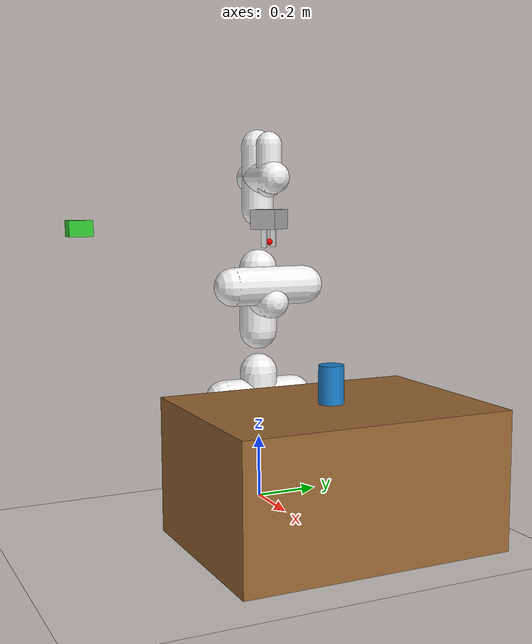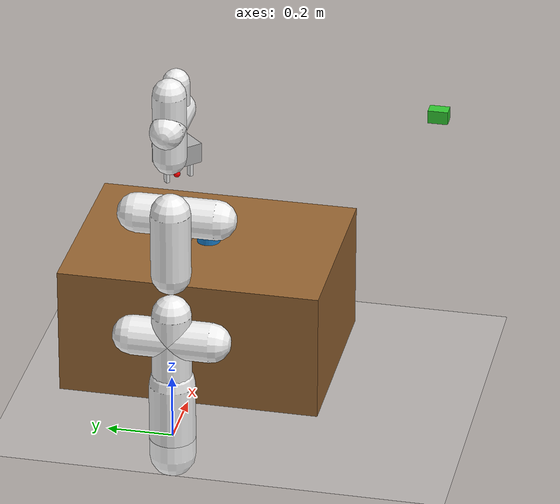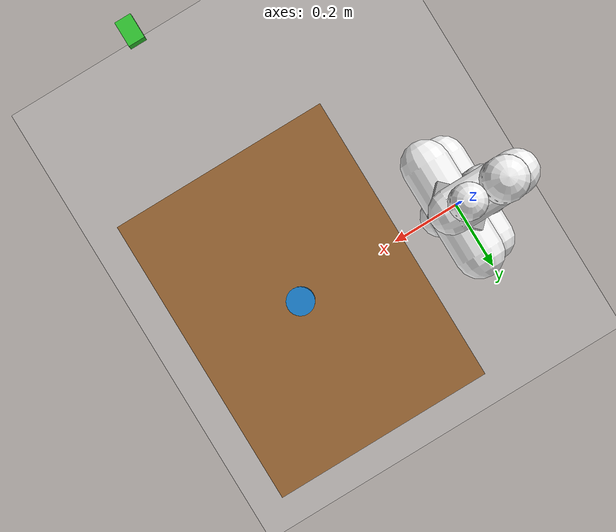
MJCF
<mujoco model="panda_grasp_scene">
  <compiler angle="radian" autolimits="true" balanceinertia="true"/>
  <option gravity="0 0 -9.81" timestep="0.002" integrator="implicitfast"/>

  <!-- Stiff contacts: high normal force, high friction multiplier -->
  <default>
    <geom solref="0.004 1" solimp="0.98 0.99 0.001"/>
  </default>

  <default>
    <default class="panda">
      <joint armature="0.1" damping="1" axis="0 0 1" range="-2.8973 2.8973"/>
      <general dyntype="none" biastype="affine"
               ctrlrange="-2.8973 2.8973" forcerange="-87 87"/>
      <default class="finger">
        <joint axis="0 1 0" type="slide" range="0 0.04"/>
      </default>
    </default>
  </default>

  <worldbody>
    <light pos="0 0 2.5" dir="0 0 -1" directional="true"/>
    <geom name="floor" type="plane" size="2 2 0.05" rgba="0.85 0.85 0.85 1"/>

    <!-- Table -->
    <body name="table" pos="0.5 0 0.2">
      <geom type="box" size="0.3 0.4 0.2" rgba="0.6 0.4 0.2 1"/>
    </body>

    <!-- Target object (cylinder = cup proxy) -->
    <body name="target_object" pos="0.5 0 0.455">
      <freejoint/>
      <inertial pos="0 0 0" mass="0.15" diaginertia="0.0002 0.0002 0.0001"/>
      <!-- radius=0.036 ensures finger inner faces (at ±0.035m from centre) -->
      <!-- contact the cylinder when the gripper closes. Light mass (0.05kg) -->
      <!-- so friction force from the simplified gripper can support lifting.  -->
      <geom name="cup" type="cylinder" size="0.036 0.055"
            rgba="0.1 0.5 0.8 1" mass="0.05" condim="4" friction="2.5 0.01 0.0001"/>
    </body>

    <body name="link0" pos="0 0 0" childclass="panda">
      <inertial mass="0.629769" pos="-0.041018 -0.00014 0.049974"
        diaginertia="0.00315 0.00388 0.004285"/>
      <geom type="capsule" size="0.07 0.12" pos="0 0 0.06" rgba="0.95 0.95 0.95 1"/>

      <body name="link1" pos="0 0 0.333">
        <inertial mass="4.970684" pos="0.003875 0.002081 -0.04762"
          diaginertia="0.0825 0.0775 0.0121"/>
        <joint name="joint1"/>
        <geom type="capsule" size="0.06 0.14" pos="0 0 -0.06" rgba="0.95 0.95 0.95 1"/>

        <!-- quat "1 -1 0 0" = 90 deg rotation around -X -->
        <body name="link2" quat="1 -1 0 0">
          <inertial mass="0.646926" pos="-0.003141 -0.02872 0.003495"
            diaginertia="0.0107 0.00785 0.00447"/>
          <joint name="joint2" range="-1.7628 1.7628"/>
          <geom type="capsule" size="0.06 0.12" pos="0 0 0" rgba="0.95 0.95 0.95 1"/>

          <body name="link3" pos="0 -0.316 0" quat="1 1 0 0">
            <inertial mass="3.228604" pos="0.02796 0.03904 -0.06654"
              diaginertia="0.0496 0.0419 0.00847"/>
            <joint name="joint3"/>
            <geom type="capsule" size="0.06 0.1" pos="0 0 0" rgba="0.95 0.95 0.95 1"/>
            <geom type="capsule" size="0.05 0.06" pos="0.05 0 0"
                  quat="0.707107 0 0.707107 0" rgba="0.95 0.95 0.95 1"/>

            <body name="link4" pos="0.0825 0 0" quat="1 1 0 0">
              <inertial mass="3.587895" pos="-0.05317 0.1046 0.0065"
                diaginertia="0.0486 0.0327 0.00941"/>
              <joint name="joint4" range="-3.0718 -0.0698"/>
              <geom type="capsule" size="0.06 0.12" pos="0 0.05 0" rgba="0.95 0.95 0.95 1"/>

              <body name="link5" pos="-0.0825 0.384 0" quat="1 -1 0 0">
                <inertial mass="1.225946" pos="-0.01156 0.04149 -0.02117"
                  diaginertia="0.0154 0.0135 0.00434"/>
                <joint name="joint5"/>
                <geom type="capsule" size="0.05 0.1" pos="0 0 0" rgba="0.95 0.95 0.95 1"/>

                <body name="link6" quat="1 1 0 0">
                  <inertial mass="1.666555" pos="0.05987 0.0003 0.01014"
                    diaginertia="0.00503 0.00475 0.00168"/>
                  <joint name="joint6" range="-0.0175 3.7525"/>
                  <geom type="capsule" size="0.05 0.08" pos="0.04 0 0"
                        quat="0.707107 0 0.707107 0" rgba="0.95 0.95 0.95 1"/>

                  <body name="link7" pos="0.088 0 0" quat="1 1 0 0">
                    <inertial mass="0.735522" pos="0.01014 0.0101 -0.07091"
                      diaginertia="0.00265 0.00244 0.000953"/>
                    <joint name="joint7"/>
                    <geom type="capsule" size="0.04 0.06" pos="0 0 -0.04" rgba="0.95 0.95 0.95 1"/>

                    <!-- Hand: quat "0.9238795 0 0 -0.3826834" = -45 deg around Z -->
                    <body name="hand" pos="0 0 0.107" quat="0.9238795 0 0 -0.3826834">
                      <inertial mass="0.73" pos="-0.01 0 0.03"
                        diaginertia="0.001 0.0025 0.0017"/>
                      <geom type="box" size="0.04 0.06 0.03" pos="0 0 0.02"
                            rgba="0.7 0.7 0.7 1"/>
                      <!-- End-effector site (target for IK) -->
                      <site name="ee_site" pos="0 0 0.09" size="0.01"
                            rgba="1 0 0 1" type="sphere"/>

                      <!-- Left finger -->
                      <body name="left_finger" pos="0 0.04 0.0584">
                        <inertial mass="0.015" pos="0 0 0"
                          diaginertia="2.375e-6 2.375e-6 7.5e-7"/>
                        <joint name="finger_joint1" class="finger"/>
                        <geom type="box" size="0.008 0.005 0.032" pos="0 0.005 0.016"
                              rgba="0.9 0.9 0.9 1" condim="4" friction="2.0 0.01 0.0001"/>
                      </body>

                      <!-- Right finger -->
                      <body name="right_finger" pos="0 -0.04 0.0584" quat="0 0 0 1">
                        <inertial mass="0.015" pos="0 0 0"
                          diaginertia="2.375e-6 2.375e-6 7.5e-7"/>
                        <joint name="finger_joint2" class="finger"/>
                        <geom type="box" size="0.008 0.005 0.032" pos="0 -0.005 0.016"
                              rgba="0.9 0.9 0.9 1" condim="4" friction="2.0 0.01 0.0001"/>
                      </body>
                    </body>
                  </body>
                </body>
              </body>
            </body>
          </body>
        </body>
      </body>
    </body>

    <!-- Perception camera body (position set programmatically per trial) -->
    <body name="perception_camera_body" pos="0.5 -0.7 0.9">
      <camera name="perception_camera" pos="0 0 0" fovy="45"/>
      <geom type="box" size="0.02 0.03 0.02" rgba="0.2 0.8 0.2 1"
            contype="0" conaffinity="0"/>
    </body>
  </worldbody>

  <!-- Coupled fingers via tendon (same as panda.xml) -->
  <tendon>
    <fixed name="split">
      <joint joint="finger_joint1" coef="0.5"/>
      <joint joint="finger_joint2" coef="0.5"/>
    </fixed>
  </tendon>

  <equality>
    <joint joint1="finger_joint1" joint2="finger_joint2"
           solimp="0.95 0.99 0.001" solref="0.005 1"/>
  </equality>

  <!-- Actuators - identical gain/bias to panda.xml for realistic dynamics -->
  <actuator>
    <general class="panda" name="actuator1" joint="joint1"
             gainprm="4500" biasprm="0 -4500 -450"/>
    <general class="panda" name="actuator2" joint="joint2"
             gainprm="4500" biasprm="0 -4500 -450"
             ctrlrange="-1.7628 1.7628"/>
    <general class="panda" name="actuator3" joint="joint3"
             gainprm="3500" biasprm="0 -3500 -350"/>
    <general class="panda" name="actuator4" joint="joint4"
             gainprm="3500" biasprm="0 -3500 -350"
             ctrlrange="-3.0718 -0.0698"/>
    <general class="panda" name="actuator5" joint="joint5"
             gainprm="2000" biasprm="0 -2000 -200" forcerange="-12 12"/>
    <general class="panda" name="actuator6" joint="joint6"
             gainprm="2000" biasprm="0 -2000 -200" forcerange="-12 12"
             ctrlrange="-0.0175 3.7525"/>
    <general class="panda" name="actuator7" joint="joint7"
             gainprm="2000" biasprm="0 -2000 -200" forcerange="-12 12"/>
    <!-- Finger actuator via tendon. ctrl=255 → open, ctrl=0 → closed -->
    <general class="panda" name="actuator8" tendon="split"
             forcerange="-100 100" ctrlrange="0 255"
             gainprm="0.01568627451 0 0" biasprm="0 -100 -10"/>
  </actuator>

  <!-- Home pose: joints at canonical Panda home, fingers open -->
  <!--
    qpos order (16 values):
      [0:7]   freejoint of target_object: px py pz qw qx qy qz
      [7:14]  arm joints 1-7
      [14:16] finger joints 1-2
  -->
  <keyframe>
    <key name="home"
         qpos="0.5 0 0.455 1 0 0 0   0 0 0 -1.57079 0 1.57079 -0.7853   0.04 0.04"
         ctrl="0 0 0 -1.57079 0 1.57079 -0.7853 255"/>
  </keyframe>
</mujoco>
